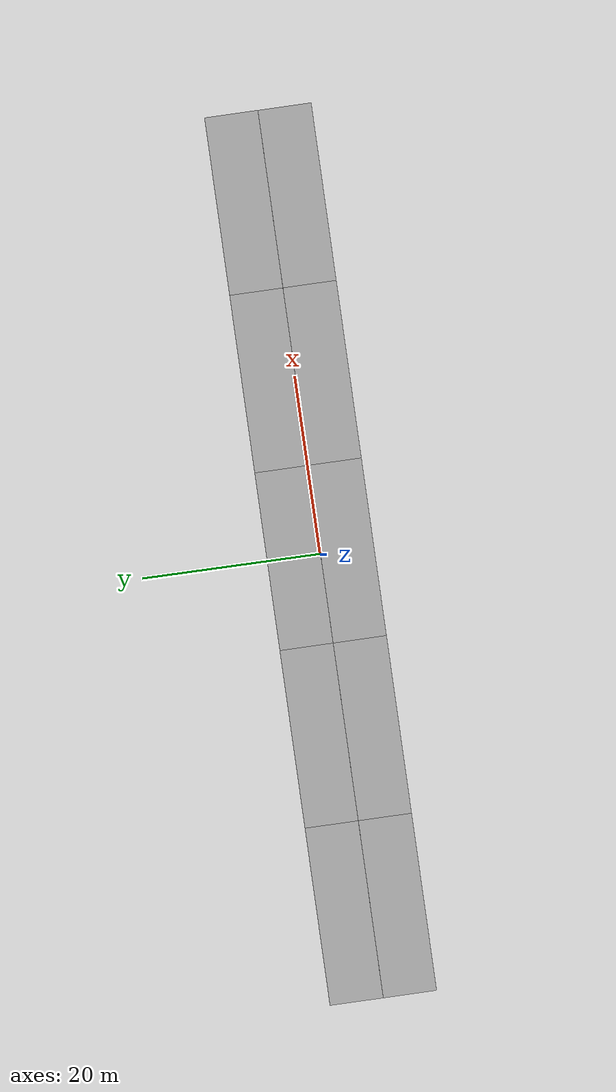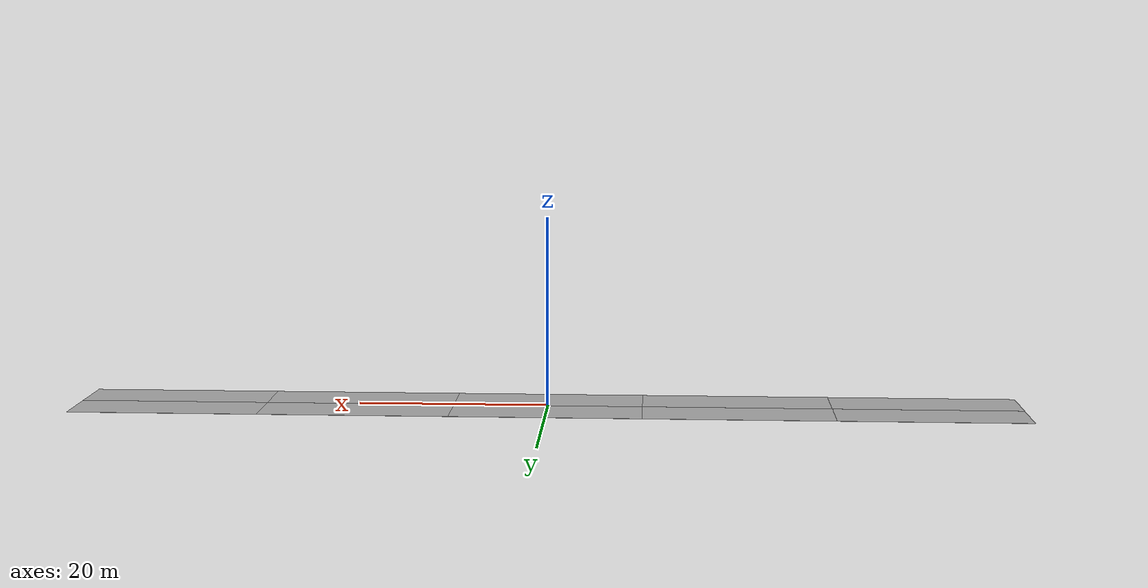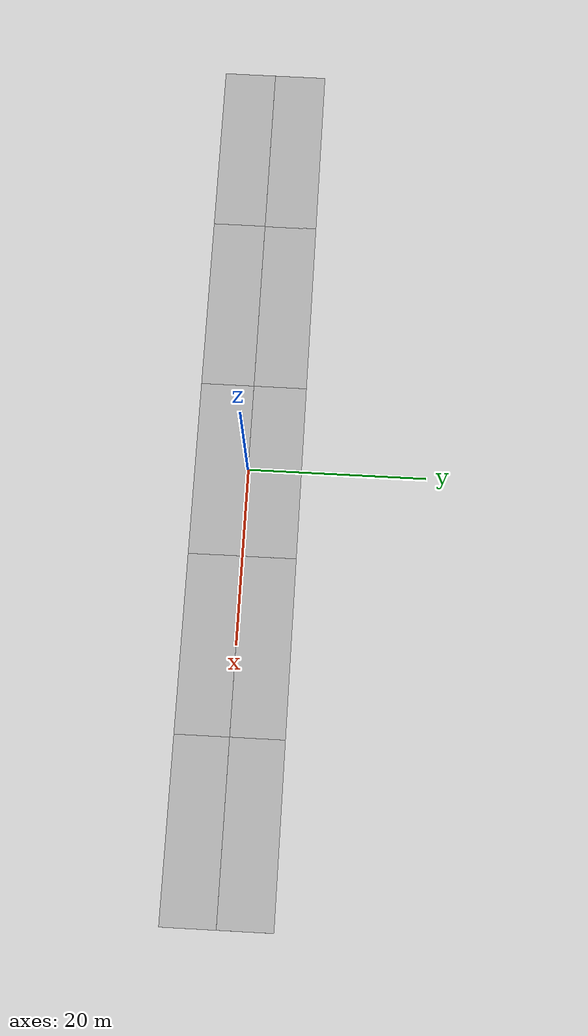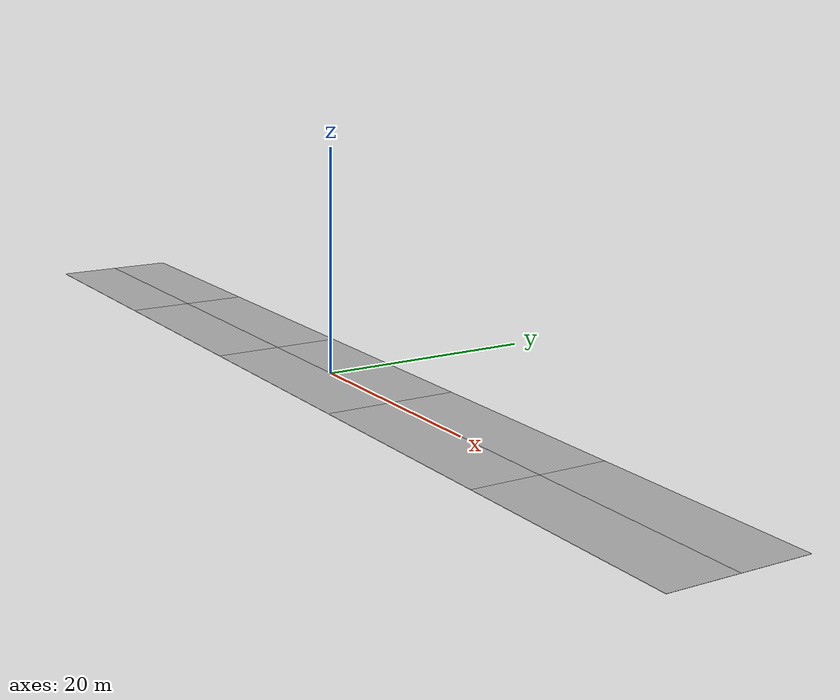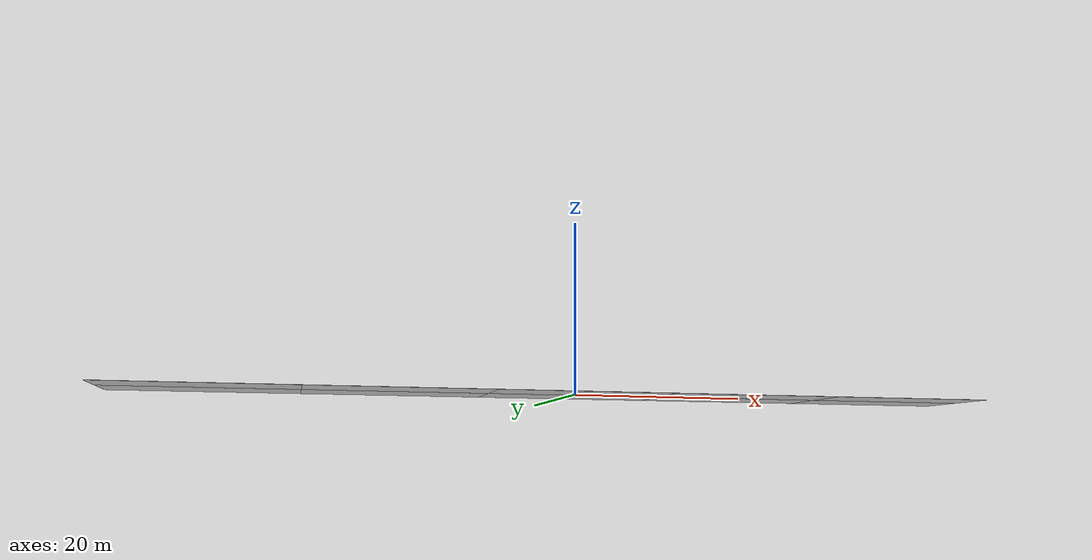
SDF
<?xml version='1.0'?>
<sdf version='1.6'>
  <model name='large_road'>
    <model name='double_straight_road'>
      <model name='straight_road'>
        <link name='link'>
          <inertial>
            <mass>1</mass>
            <inertia>
              <ixx>0.166667</ixx>
              <ixy>0</ixy>
              <ixz>0</ixz>
              <iyy>0.166667</iyy>
              <iyz>0</iyz>
              <izz>0.166667</izz>
            </inertia>
            <pose frame=''>0 0 0 0 -0 0</pose>
          </inertial>
          <self_collide>0</self_collide>
          <enable_wind>0</enable_wind>
          <kinematic>0</kinematic>
          <pose frame=''>0 0 0 0 -0 0</pose>
          <gravity>1</gravity>
          <visual name='visual'>
            <geometry>
              <box>
                <size>20 6 0.02</size>
              </box>
            </geometry>
            <material>
              <script>
                <name>simple_road/Diffuse</name>
                <uri>model://large_road/materials/scripts</uri>
                <uri>model://large_road/materials/textures</uri>
              </script>
              <shader type='vertex'>
                <normal_map>__default__</normal_map>
              </shader>
              <ambient>0.3 0.3 0.3 1</ambient>
              <diffuse>0.7 0.7 0.7 1</diffuse>
              <specular>0.01 0.01 0.01 1</specular>
              <emissive>0 0 0 1</emissive>
            </material>
            <pose frame=''>0 0 0.01 0 -0 0</pose>
            <transparency>0</transparency>
            <cast_shadows>1</cast_shadows>
          </visual>
          <collision name='collision'>
            <laser_retro>0</laser_retro>
            <max_contacts>10</max_contacts>
            <pose frame=''>0 0 0.01 0 -0 0</pose>
            <geometry>
              <box>
                <size>20 6 0.02</size>
              </box>
            </geometry>
            <surface>
              <friction>
                <ode>
                  <mu>1</mu>
                  <mu2>1</mu2>
                  <fdir1>0 0 0</fdir1>
                  <slip1>0</slip1>
                  <slip2>0</slip2>
                </ode>
                <torsional>
                  <coefficient>1</coefficient>
                  <patch_radius>0</patch_radius>
                  <surface_radius>0</surface_radius>
                  <use_patch_radius>1</use_patch_radius>
                  <ode>
                    <slip>0</slip>
                  </ode>
                </torsional>
              </friction>
              <bounce>
                <restitution_coefficient>0</restitution_coefficient>
                <threshold>1e+06</threshold>
              </bounce>
              <contact>
                <collide_without_contact>0</collide_without_contact>
                <collide_without_contact_bitmask>1</collide_without_contact_bitmask>
                <collide_bitmask>1</collide_bitmask>
                <ode>
                  <soft_cfm>0</soft_cfm>
                  <soft_erp>0.2</soft_erp>
                  <kp>1e+13</kp>
                  <kd>1</kd>
                  <max_vel>0.01</max_vel>
                  <min_depth>0</min_depth>
                </ode>
                <bullet>
                  <split_impulse>1</split_impulse>
                  <split_impulse_penetration_threshold>-0.01</split_impulse_penetration_threshold>
                  <soft_cfm>0</soft_cfm>
                  <soft_erp>0.2</soft_erp>
                  <kp>1e+13</kp>
                  <kd>1</kd>
                </bullet>
              </contact>
            </surface>
          </collision>
        </link>
        <static>1</static>
        <allow_auto_disable>1</allow_auto_disable>
        <pose frame=''>0 -3.0009 0 0 -0 0</pose>
      </model>
      <model name='straight_road_0'>
        <link name='link'>
          <inertial>
            <mass>1</mass>
            <inertia>
              <ixx>0.166667</ixx>
              <ixy>0</ixy>
              <ixz>0</ixz>
              <iyy>0.166667</iyy>
              <iyz>0</iyz>
              <izz>0.166667</izz>
            </inertia>
            <pose frame=''>0 0 0 0 -0 0</pose>
          </inertial>
          <self_collide>0</self_collide>
          <enable_wind>0</enable_wind>
          <kinematic>0</kinematic>
          <pose frame=''>0 0 0 0 -0 0</pose>
          <gravity>1</gravity>
          <visual name='visual'>
            <geometry>
              <box>
                <size>20 6 0.02</size>
              </box>
            </geometry>
            <material>
              <script>
                <name>simple_road/Diffuse</name>
                <uri>model://large_road/materials/scripts</uri>
                <uri>model://large_road/materials/textures</uri>
              </script>
              <shader type='vertex'>
                <normal_map>__default__</normal_map>
              </shader>
              <ambient>0.3 0.3 0.3 1</ambient>
              <diffuse>0.7 0.7 0.7 1</diffuse>
              <specular>0.01 0.01 0.01 1</specular>
              <emissive>0 0 0 1</emissive>
            </material>
            <pose frame=''>0 0 0.01 0 -0 0</pose>
            <transparency>0</transparency>
            <cast_shadows>1</cast_shadows>
          </visual>
          <collision name='collision'>
            <laser_retro>0</laser_retro>
            <max_contacts>10</max_contacts>
            <pose frame=''>0 0 0.01 0 -0 0</pose>
            <geometry>
              <box>
                <size>20 6 0.02</size>
              </box>
            </geometry>
            <surface>
              <friction>
                <ode>
                  <mu>1</mu>
                  <mu2>1</mu2>
                  <fdir1>0 0 0</fdir1>
                  <slip1>0</slip1>
                  <slip2>0</slip2>
                </ode>
                <torsional>
                  <coefficient>1</coefficient>
                  <patch_radius>0</patch_radius>
                  <surface_radius>0</surface_radius>
                  <use_patch_radius>1</use_patch_radius>
                  <ode>
                    <slip>0</slip>
                  </ode>
                </torsional>
              </friction>
              <bounce>
                <restitution_coefficient>0</restitution_coefficient>
                <threshold>1e+06</threshold>
              </bounce>
              <contact>
                <collide_without_contact>0</collide_without_contact>
                <collide_without_contact_bitmask>1</collide_without_contact_bitmask>
                <collide_bitmask>1</collide_bitmask>
                <ode>
                  <soft_cfm>0</soft_cfm>
                  <soft_erp>0.2</soft_erp>
                  <kp>1e+13</kp>
                  <kd>1</kd>
                  <max_vel>0.01</max_vel>
                  <min_depth>0</min_depth>
                </ode>
                <bullet>
                  <split_impulse>1</split_impulse>
                  <split_impulse_penetration_threshold>-0.01</split_impulse_penetration_threshold>
                  <soft_cfm>0</soft_cfm>
                  <soft_erp>0.2</soft_erp>
                  <kp>1e+13</kp>
                  <kd>1</kd>
                </bullet>
              </contact>
            </surface>
          </collision>
        </link>
        <static>1</static>
        <allow_auto_disable>1</allow_auto_disable>
        <pose frame=''>0 3.0009 0 0 -0 0</pose>
      </model>
      <static>1</static>
      <allow_auto_disable>1</allow_auto_disable>
      <pose frame=''>-0.002785 -0 0 0 -0 0</pose>
    </model>
    <model name='double_straight_road_0'>
      <model name='straight_road'>
        <link name='link'>
          <inertial>
            <mass>1</mass>
            <inertia>
              <ixx>0.166667</ixx>
              <ixy>0</ixy>
              <ixz>0</ixz>
              <iyy>0.166667</iyy>
              <iyz>0</iyz>
              <izz>0.166667</izz>
            </inertia>
            <pose frame=''>0 0 0 0 -0 0</pose>
          </inertial>
          <self_collide>0</self_collide>
          <enable_wind>0</enable_wind>
          <kinematic>0</kinematic>
          <pose frame=''>0 0 0 0 -0 0</pose>
          <gravity>1</gravity>
          <visual name='visual'>
            <geometry>
              <box>
                <size>20 6 0.02</size>
              </box>
            </geometry>
            <material>
              <script>
                <name>simple_road/Diffuse</name>
                <uri>model://large_road/materials/scripts</uri>
                <uri>model://large_road/materials/textures</uri>
              </script>
              <shader type='vertex'>
                <normal_map>__default__</normal_map>
              </shader>
              <ambient>0.3 0.3 0.3 1</ambient>
              <diffuse>0.7 0.7 0.7 1</diffuse>
              <specular>0.01 0.01 0.01 1</specular>
              <emissive>0 0 0 1</emissive>
            </material>
            <pose frame=''>0 0 0.01 0 -0 0</pose>
            <transparency>0</transparency>
            <cast_shadows>1</cast_shadows>
          </visual>
          <collision name='collision'>
            <laser_retro>0</laser_retro>
            <max_contacts>10</max_contacts>
            <pose frame=''>0 0 0.01 0 -0 0</pose>
            <geometry>
              <box>
                <size>20 6 0.02</size>
              </box>
            </geometry>
            <surface>
              <friction>
                <ode>
                  <mu>1</mu>
                  <mu2>1</mu2>
                  <fdir1>0 0 0</fdir1>
                  <slip1>0</slip1>
                  <slip2>0</slip2>
                </ode>
                <torsional>
                  <coefficient>1</coefficient>
                  <patch_radius>0</patch_radius>
                  <surface_radius>0</surface_radius>
                  <use_patch_radius>1</use_patch_radius>
                  <ode>
                    <slip>0</slip>
                  </ode>
                </torsional>
              </friction>
              <bounce>
                <restitution_coefficient>0</restitution_coefficient>
                <threshold>1e+06</threshold>
              </bounce>
              <contact>
                <collide_without_contact>0</collide_without_contact>
                <collide_without_contact_bitmask>1</collide_without_contact_bitmask>
                <collide_bitmask>1</collide_bitmask>
                <ode>
                  <soft_cfm>0</soft_cfm>
                  <soft_erp>0.2</soft_erp>
                  <kp>1e+13</kp>
                  <kd>1</kd>
                  <max_vel>0.01</max_vel>
                  <min_depth>0</min_depth>
                </ode>
                <bullet>
                  <split_impulse>1</split_impulse>
                  <split_impulse_penetration_threshold>-0.01</split_impulse_penetration_threshold>
                  <soft_cfm>0</soft_cfm>
                  <soft_erp>0.2</soft_erp>
                  <kp>1e+13</kp>
                  <kd>1</kd>
                </bullet>
              </contact>
            </surface>
          </collision>
        </link>
        <static>1</static>
        <allow_auto_disable>1</allow_auto_disable>
        <pose frame=''>0 -3.0009 0 0 -0 0</pose>
      </model>
      <model name='straight_road_0'>
        <link name='link'>
          <inertial>
            <mass>1</mass>
            <inertia>
              <ixx>0.166667</ixx>
              <ixy>0</ixy>
              <ixz>0</ixz>
              <iyy>0.166667</iyy>
              <iyz>0</iyz>
              <izz>0.166667</izz>
            </inertia>
            <pose frame=''>0 0 0 0 -0 0</pose>
          </inertial>
          <self_collide>0</self_collide>
          <enable_wind>0</enable_wind>
          <kinematic>0</kinematic>
          <pose frame=''>0 0 0 0 -0 0</pose>
          <gravity>1</gravity>
          <visual name='visual'>
            <geometry>
              <box>
                <size>20 6 0.02</size>
              </box>
            </geometry>
            <material>
              <script>
                <name>simple_road/Diffuse</name>
                <uri>model://large_road/materials/scripts</uri>
                <uri>model://large_road/materials/textures</uri>
              </script>
              <shader type='vertex'>
                <normal_map>__default__</normal_map>
              </shader>
              <ambient>0.3 0.3 0.3 1</ambient>
              <diffuse>0.7 0.7 0.7 1</diffuse>
              <specular>0.01 0.01 0.01 1</specular>
              <emissive>0 0 0 1</emissive>
            </material>
            <pose frame=''>0 0 0.01 0 -0 0</pose>
            <transparency>0</transparency>
            <cast_shadows>1</cast_shadows>
          </visual>
          <collision name='collision'>
            <laser_retro>0</laser_retro>
            <max_contacts>10</max_contacts>
            <pose frame=''>0 0 0.01 0 -0 0</pose>
            <geometry>
              <box>
                <size>20 6 0.02</size>
              </box>
            </geometry>
            <surface>
              <friction>
                <ode>
                  <mu>1</mu>
                  <mu2>1</mu2>
                  <fdir1>0 0 0</fdir1>
                  <slip1>0</slip1>
                  <slip2>0</slip2>
                </ode>
                <torsional>
                  <coefficient>1</coefficient>
                  <patch_radius>0</patch_radius>
                  <surface_radius>0</surface_radius>
                  <use_patch_radius>1</use_patch_radius>
                  <ode>
                    <slip>0</slip>
                  </ode>
                </torsional>
              </friction>
              <bounce>
                <restitution_coefficient>0</restitution_coefficient>
                <threshold>1e+06</threshold>
              </bounce>
              <contact>
                <collide_without_contact>0</collide_without_contact>
                <collide_without_contact_bitmask>1</collide_without_contact_bitmask>
                <collide_bitmask>1</collide_bitmask>
                <ode>
                  <soft_cfm>0</soft_cfm>
                  <soft_erp>0.2</soft_erp>
                  <kp>1e+13</kp>
                  <kd>1</kd>
                  <max_vel>0.01</max_vel>
                  <min_depth>0</min_depth>
                </ode>
                <bullet>
                  <split_impulse>1</split_impulse>
                  <split_impulse_penetration_threshold>-0.01</split_impulse_penetration_threshold>
                  <soft_cfm>0</soft_cfm>
                  <soft_erp>0.2</soft_erp>
                  <kp>1e+13</kp>
                  <kd>1</kd>
                </bullet>
              </contact>
            </surface>
          </collision>
        </link>
        <static>1</static>
        <allow_auto_disable>1</allow_auto_disable>
        <pose frame=''>0 3.0009 0 0 -0 0</pose>
      </model>
      <static>1</static>
      <allow_auto_disable>1</allow_auto_disable>
      <pose frame=''>-20.0022 -0 0 0 -0 0</pose>
    </model>
    <model name='double_straight_road_1'>
      <model name='straight_road'>
        <link name='link'>
          <inertial>
            <mass>1</mass>
            <inertia>
              <ixx>0.166667</ixx>
              <ixy>0</ixy>
              <ixz>0</ixz>
              <iyy>0.166667</iyy>
              <iyz>0</iyz>
              <izz>0.166667</izz>
            </inertia>
            <pose frame=''>0 0 0 0 -0 0</pose>
          </inertial>
          <self_collide>0</self_collide>
          <enable_wind>0</enable_wind>
          <kinematic>0</kinematic>
          <pose frame=''>0 0 0 0 -0 0</pose>
          <gravity>1</gravity>
          <visual name='visual'>
            <geometry>
              <box>
                <size>20 6 0.02</size>
              </box>
            </geometry>
            <material>
              <script>
                <name>simple_road/Diffuse</name>
                <uri>model://large_road/materials/scripts</uri>
                <uri>model://large_road/materials/textures</uri>
              </script>
              <shader type='vertex'>
                <normal_map>__default__</normal_map>
              </shader>
              <ambient>0.3 0.3 0.3 1</ambient>
              <diffuse>0.7 0.7 0.7 1</diffuse>
              <specular>0.01 0.01 0.01 1</specular>
              <emissive>0 0 0 1</emissive>
            </material>
            <pose frame=''>0 0 0.01 0 -0 0</pose>
            <transparency>0</transparency>
            <cast_shadows>1</cast_shadows>
          </visual>
          <collision name='collision'>
            <laser_retro>0</laser_retro>
            <max_contacts>10</max_contacts>
            <pose frame=''>0 0 0.01 0 -0 0</pose>
            <geometry>
              <box>
                <size>20 6 0.02</size>
              </box>
            </geometry>
            <surface>
              <friction>
                <ode>
                  <mu>1</mu>
                  <mu2>1</mu2>
                  <fdir1>0 0 0</fdir1>
                  <slip1>0</slip1>
                  <slip2>0</slip2>
                </ode>
                <torsional>
                  <coefficient>1</coefficient>
                  <patch_radius>0</patch_radius>
                  <surface_radius>0</surface_radius>
                  <use_patch_radius>1</use_patch_radius>
                  <ode>
                    <slip>0</slip>
                  </ode>
                </torsional>
              </friction>
              <bounce>
                <restitution_coefficient>0</restitution_coefficient>
                <threshold>1e+06</threshold>
              </bounce>
              <contact>
                <collide_without_contact>0</collide_without_contact>
                <collide_without_contact_bitmask>1</collide_without_contact_bitmask>
                <collide_bitmask>1</collide_bitmask>
                <ode>
                  <soft_cfm>0</soft_cfm>
                  <soft_erp>0.2</soft_erp>
                  <kp>1e+13</kp>
                  <kd>1</kd>
                  <max_vel>0.01</max_vel>
                  <min_depth>0</min_depth>
                </ode>
                <bullet>
                  <split_impulse>1</split_impulse>
                  <split_impulse_penetration_threshold>-0.01</split_impulse_penetration_threshold>
                  <soft_cfm>0</soft_cfm>
                  <soft_erp>0.2</soft_erp>
                  <kp>1e+13</kp>
                  <kd>1</kd>
                </bullet>
              </contact>
            </surface>
          </collision>
        </link>
        <static>1</static>
        <allow_auto_disable>1</allow_auto_disable>
        <pose frame=''>0 -3.0009 0 0 -0 0</pose>
      </model>
      <model name='straight_road_0'>
        <link name='link'>
          <inertial>
            <mass>1</mass>
            <inertia>
              <ixx>0.166667</ixx>
              <ixy>0</ixy>
              <ixz>0</ixz>
              <iyy>0.166667</iyy>
              <iyz>0</iyz>
              <izz>0.166667</izz>
            </inertia>
            <pose frame=''>0 0 0 0 -0 0</pose>
          </inertial>
          <self_collide>0</self_collide>
          <enable_wind>0</enable_wind>
          <kinematic>0</kinematic>
          <pose frame=''>0 0 0 0 -0 0</pose>
          <gravity>1</gravity>
          <visual name='visual'>
            <geometry>
              <box>
                <size>20 6 0.02</size>
              </box>
            </geometry>
            <material>
              <script>
                <name>simple_road/Diffuse</name>
                <uri>model://large_road/materials/scripts</uri>
                <uri>model://large_road/materials/textures</uri>
              </script>
              <shader type='vertex'>
                <normal_map>__default__</normal_map>
              </shader>
              <ambient>0.3 0.3 0.3 1</ambient>
              <diffuse>0.7 0.7 0.7 1</diffuse>
              <specular>0.01 0.01 0.01 1</specular>
              <emissive>0 0 0 1</emissive>
            </material>
            <pose frame=''>0 0 0.01 0 -0 0</pose>
            <transparency>0</transparency>
            <cast_shadows>1</cast_shadows>
          </visual>
          <collision name='collision'>
            <laser_retro>0</laser_retro>
            <max_contacts>10</max_contacts>
            <pose frame=''>0 0 0.01 0 -0 0</pose>
            <geometry>
              <box>
                <size>20 6 0.02</size>
              </box>
            </geometry>
            <surface>
              <friction>
                <ode>
                  <mu>1</mu>
                  <mu2>1</mu2>
                  <fdir1>0 0 0</fdir1>
                  <slip1>0</slip1>
                  <slip2>0</slip2>
                </ode>
                <torsional>
                  <coefficient>1</coefficient>
                  <patch_radius>0</patch_radius>
                  <surface_radius>0</surface_radius>
                  <use_patch_radius>1</use_patch_radius>
                  <ode>
                    <slip>0</slip>
                  </ode>
                </torsional>
              </friction>
              <bounce>
                <restitution_coefficient>0</restitution_coefficient>
                <threshold>1e+06</threshold>
              </bounce>
              <contact>
                <collide_without_contact>0</collide_without_contact>
                <collide_without_contact_bitmask>1</collide_without_contact_bitmask>
                <collide_bitmask>1</collide_bitmask>
                <ode>
                  <soft_cfm>0</soft_cfm>
                  <soft_erp>0.2</soft_erp>
                  <kp>1e+13</kp>
                  <kd>1</kd>
                  <max_vel>0.01</max_vel>
                  <min_depth>0</min_depth>
                </ode>
                <bullet>
                  <split_impulse>1</split_impulse>
                  <split_impulse_penetration_threshold>-0.01</split_impulse_penetration_threshold>
                  <soft_cfm>0</soft_cfm>
                  <soft_erp>0.2</soft_erp>
                  <kp>1e+13</kp>
                  <kd>1</kd>
                </bullet>
              </contact>
            </surface>
          </collision>
        </link>
        <static>1</static>
        <allow_auto_disable>1</allow_auto_disable>
        <pose frame=''>0 3.0009 0 0 -0 0</pose>
      </model>
      <static>1</static>
      <allow_auto_disable>1</allow_auto_disable>
      <pose frame=''>19.9841 -0 0 0 -0 0</pose>
    </model>
    <model name='double_straight_road_2'>
      <model name='straight_road'>
        <link name='link'>
          <inertial>
            <mass>1</mass>
            <inertia>
              <ixx>0.166667</ixx>
              <ixy>0</ixy>
              <ixz>0</ixz>
              <iyy>0.166667</iyy>
              <iyz>0</iyz>
              <izz>0.166667</izz>
            </inertia>
            <pose frame=''>0 0 0 0 -0 0</pose>
          </inertial>
          <self_collide>0</self_collide>
          <enable_wind>0</enable_wind>
          <kinematic>0</kinematic>
          <pose frame=''>0 0 0 0 -0 0</pose>
          <gravity>1</gravity>
          <visual name='visual'>
            <geometry>
              <box>
                <size>20 6 0.02</size>
              </box>
            </geometry>
            <material>
              <script>
                <name>simple_road/Diffuse</name>
                <uri>model://large_road/materials/scripts</uri>
                <uri>model://large_road/materials/textures</uri>
              </script>
              <shader type='vertex'>
                <normal_map>__default__</normal_map>
              </shader>
              <ambient>0.3 0.3 0.3 1</ambient>
              <diffuse>0.7 0.7 0.7 1</diffuse>
              <specular>0.01 0.01 0.01 1</specular>
              <emissive>0 0 0 1</emissive>
            </material>
            <pose frame=''>0 0 0.01 0 -0 0</pose>
            <transparency>0</transparency>
            <cast_shadows>1</cast_shadows>
          </visual>
          <collision name='collision'>
            <laser_retro>0</laser_retro>
            <max_contacts>10</max_contacts>
            <pose frame=''>0 0 0.01 0 -0 0</pose>
            <geometry>
              <box>
                <size>20 6 0.02</size>
              </box>
            </geometry>
            <surface>
              <friction>
                <ode>
                  <mu>1</mu>
                  <mu2>1</mu2>
                  <fdir1>0 0 0</fdir1>
                  <slip1>0</slip1>
                  <slip2>0</slip2>
                </ode>
                <torsional>
                  <coefficient>1</coefficient>
                  <patch_radius>0</patch_radius>
                  <surface_radius>0</surface_radius>
                  <use_patch_radius>1</use_patch_radius>
                  <ode>
                    <slip>0</slip>
                  </ode>
                </torsional>
              </friction>
              <bounce>
                <restitution_coefficient>0</restitution_coefficient>
                <threshold>1e+06</threshold>
              </bounce>
              <contact>
                <collide_without_contact>0</collide_without_contact>
                <collide_without_contact_bitmask>1</collide_without_contact_bitmask>
                <collide_bitmask>1</collide_bitmask>
                <ode>
                  <soft_cfm>0</soft_cfm>
                  <soft_erp>0.2</soft_erp>
                  <kp>1e+13</kp>
                  <kd>1</kd>
                  <max_vel>0.01</max_vel>
                  <min_depth>0</min_depth>
                </ode>
                <bullet>
                  <split_impulse>1</split_impulse>
                  <split_impulse_penetration_threshold>-0.01</split_impulse_penetration_threshold>
                  <soft_cfm>0</soft_cfm>
                  <soft_erp>0.2</soft_erp>
                  <kp>1e+13</kp>
                  <kd>1</kd>
                </bullet>
              </contact>
            </surface>
          </collision>
        </link>
        <static>1</static>
        <allow_auto_disable>1</allow_auto_disable>
        <pose frame=''>0 -3.0009 0 0 -0 0</pose>
      </model>
      <model name='straight_road_0'>
        <link name='link'>
          <inertial>
            <mass>1</mass>
            <inertia>
              <ixx>0.166667</ixx>
              <ixy>0</ixy>
              <ixz>0</ixz>
              <iyy>0.166667</iyy>
              <iyz>0</iyz>
              <izz>0.166667</izz>
            </inertia>
            <pose frame=''>0 0 0 0 -0 0</pose>
          </inertial>
          <self_collide>0</self_collide>
          <enable_wind>0</enable_wind>
          <kinematic>0</kinematic>
          <pose frame=''>0 0 0 0 -0 0</pose>
          <gravity>1</gravity>
          <visual name='visual'>
            <geometry>
              <box>
                <size>20 6 0.02</size>
              </box>
            </geometry>
            <material>
              <script>
                <name>simple_road/Diffuse</name>
                <uri>model://large_road/materials/scripts</uri>
                <uri>model://large_road/materials/textures</uri>
              </script>
              <shader type='vertex'>
                <normal_map>__default__</normal_map>
              </shader>
              <ambient>0.3 0.3 0.3 1</ambient>
              <diffuse>0.7 0.7 0.7 1</diffuse>
              <specular>0.01 0.01 0.01 1</specular>
              <emissive>0 0 0 1</emissive>
            </material>
            <pose frame=''>0 0 0.01 0 -0 0</pose>
            <transparency>0</transparency>
            <cast_shadows>1</cast_shadows>
          </visual>
          <collision name='collision'>
            <laser_retro>0</laser_retro>
            <max_contacts>10</max_contacts>
            <pose frame=''>0 0 0.01 0 -0 0</pose>
            <geometry>
              <box>
                <size>20 6 0.02</size>
              </box>
            </geometry>
            <surface>
              <friction>
                <ode>
                  <mu>1</mu>
                  <mu2>1</mu2>
                  <fdir1>0 0 0</fdir1>
                  <slip1>0</slip1>
                  <slip2>0</slip2>
                </ode>
                <torsional>
                  <coefficient>1</coefficient>
                  <patch_radius>0</patch_radius>
                  <surface_radius>0</surface_radius>
                  <use_patch_radius>1</use_patch_radius>
                  <ode>
                    <slip>0</slip>
                  </ode>
                </torsional>
              </friction>
              <bounce>
                <restitution_coefficient>0</restitution_coefficient>
                <threshold>1e+06</threshold>
              </bounce>
              <contact>
                <collide_without_contact>0</collide_without_contact>
                <collide_without_contact_bitmask>1</collide_without_contact_bitmask>
                <collide_bitmask>1</collide_bitmask>
                <ode>
                  <soft_cfm>0</soft_cfm>
                  <soft_erp>0.2</soft_erp>
                  <kp>1e+13</kp>
                  <kd>1</kd>
                  <max_vel>0.01</max_vel>
                  <min_depth>0</min_depth>
                </ode>
                <bullet>
                  <split_impulse>1</split_impulse>
                  <split_impulse_penetration_threshold>-0.01</split_impulse_penetration_threshold>
                  <soft_cfm>0</soft_cfm>
                  <soft_erp>0.2</soft_erp>
                  <kp>1e+13</kp>
                  <kd>1</kd>
                </bullet>
              </contact>
            </surface>
          </collision>
        </link>
        <static>1</static>
        <allow_auto_disable>1</allow_auto_disable>
        <pose frame=''>0 3.0009 0 0 -0 0</pose>
      </model>
      <static>1</static>
      <allow_auto_disable>1</allow_auto_disable>
      <pose frame=''>-39.9522 -0 0 0 -0 0</pose>
    </model>
    <model name='double_straight_road_3'>
      <model name='straight_road'>
        <link name='link'>
          <inertial>
            <mass>1</mass>
            <inertia>
              <ixx>0.166667</ixx>
              <ixy>0</ixy>
              <ixz>0</ixz>
              <iyy>0.166667</iyy>
              <iyz>0</iyz>
              <izz>0.166667</izz>
            </inertia>
            <pose frame=''>0 0 0 0 -0 0</pose>
          </inertial>
          <self_collide>0</self_collide>
          <enable_wind>0</enable_wind>
          <kinematic>0</kinematic>
          <pose frame=''>0 0 0 0 -0 0</pose>
          <gravity>1</gravity>
          <visual name='visual'>
            <geometry>
              <box>
                <size>20 6 0.02</size>
              </box>
            </geometry>
            <material>
              <script>
                <name>simple_road/Diffuse</name>
                <uri>model://large_road/materials/scripts</uri>
                <uri>model://large_road/materials/textures</uri>
              </script>
              <shader type='vertex'>
                <normal_map>__default__</normal_map>
              </shader>
              <ambient>0.3 0.3 0.3 1</ambient>
              <diffuse>0.7 0.7 0.7 1</diffuse>
              <specular>0.01 0.01 0.01 1</specular>
              <emissive>0 0 0 1</emissive>
            </material>
            <pose frame=''>0 0 0.01 0 -0 0</pose>
            <transparency>0</transparency>
            <cast_shadows>1</cast_shadows>
          </visual>
          <collision name='collision'>
            <laser_retro>0</laser_retro>
            <max_contacts>10</max_contacts>
            <pose frame=''>0 0 0.01 0 -0 0</pose>
            <geometry>
              <box>
                <size>20 6 0.02</size>
              </box>
            </geometry>
            <surface>
              <friction>
                <ode>
                  <mu>1</mu>
                  <mu2>1</mu2>
                  <fdir1>0 0 0</fdir1>
                  <slip1>0</slip1>
                  <slip2>0</slip2>
                </ode>
                <torsional>
                  <coefficient>1</coefficient>
                  <patch_radius>0</patch_radius>
                  <surface_radius>0</surface_radius>
                  <use_patch_radius>1</use_patch_radius>
                  <ode>
                    <slip>0</slip>
                  </ode>
                </torsional>
              </friction>
              <bounce>
                <restitution_coefficient>0</restitution_coefficient>
                <threshold>1e+06</threshold>
              </bounce>
              <contact>
                <collide_without_contact>0</collide_without_contact>
                <collide_without_contact_bitmask>1</collide_without_contact_bitmask>
                <collide_bitmask>1</collide_bitmask>
                <ode>
                  <soft_cfm>0</soft_cfm>
                  <soft_erp>0.2</soft_erp>
                  <kp>1e+13</kp>
                  <kd>1</kd>
                  <max_vel>0.01</max_vel>
                  <min_depth>0</min_depth>
                </ode>
                <bullet>
                  <split_impulse>1</split_impulse>
                  <split_impulse_penetration_threshold>-0.01</split_impulse_penetration_threshold>
                  <soft_cfm>0</soft_cfm>
                  <soft_erp>0.2</soft_erp>
                  <kp>1e+13</kp>
                  <kd>1</kd>
                </bullet>
              </contact>
            </surface>
          </collision>
        </link>
        <static>1</static>
        <allow_auto_disable>1</allow_auto_disable>
        <pose frame=''>0 -3.0009 0 0 -0 0</pose>
      </model>
      <model name='straight_road_0'>
        <link name='link'>
          <inertial>
            <mass>1</mass>
            <inertia>
              <ixx>0.166667</ixx>
              <ixy>0</ixy>
              <ixz>0</ixz>
              <iyy>0.166667</iyy>
              <iyz>0</iyz>
              <izz>0.166667</izz>
            </inertia>
            <pose frame=''>0 0 0 0 -0 0</pose>
          </inertial>
          <self_collide>0</self_collide>
          <enable_wind>0</enable_wind>
          <kinematic>0</kinematic>
          <pose frame=''>0 0 0 0 -0 0</pose>
          <gravity>1</gravity>
          <visual name='visual'>
            <geometry>
              <box>
                <size>20 6 0.02</size>
              </box>
            </geometry>
            <material>
              <script>
                <name>simple_road/Diffuse</name>
                <uri>model://large_road/materials/scripts</uri>
                <uri>model://large_road/materials/textures</uri>
              </script>
              <shader type='vertex'>
                <normal_map>__default__</normal_map>
              </shader>
              <ambient>0.3 0.3 0.3 1</ambient>
              <diffuse>0.7 0.7 0.7 1</diffuse>
              <specular>0.01 0.01 0.01 1</specular>
              <emissive>0 0 0 1</emissive>
            </material>
            <pose frame=''>0 0 0.01 0 -0 0</pose>
            <transparency>0</transparency>
            <cast_shadows>1</cast_shadows>
          </visual>
          <collision name='collision'>
            <laser_retro>0</laser_retro>
            <max_contacts>10</max_contacts>
            <pose frame=''>0 0 0.01 0 -0 0</pose>
            <geometry>
              <box>
                <size>20 6 0.02</size>
              </box>
            </geometry>
            <surface>
              <friction>
                <ode>
                  <mu>1</mu>
                  <mu2>1</mu2>
                  <fdir1>0 0 0</fdir1>
                  <slip1>0</slip1>
                  <slip2>0</slip2>
                </ode>
                <torsional>
                  <coefficient>1</coefficient>
                  <patch_radius>0</patch_radius>
                  <surface_radius>0</surface_radius>
                  <use_patch_radius>1</use_patch_radius>
                  <ode>
                    <slip>0</slip>
                  </ode>
                </torsional>
              </friction>
              <bounce>
                <restitution_coefficient>0</restitution_coefficient>
                <threshold>1e+06</threshold>
              </bounce>
              <contact>
                <collide_without_contact>0</collide_without_contact>
                <collide_without_contact_bitmask>1</collide_without_contact_bitmask>
                <collide_bitmask>1</collide_bitmask>
                <ode>
                  <soft_cfm>0</soft_cfm>
                  <soft_erp>0.2</soft_erp>
                  <kp>1e+13</kp>
                  <kd>1</kd>
                  <max_vel>0.01</max_vel>
                  <min_depth>0</min_depth>
                </ode>
                <bullet>
                  <split_impulse>1</split_impulse>
                  <split_impulse_penetration_threshold>-0.01</split_impulse_penetration_threshold>
                  <soft_cfm>0</soft_cfm>
                  <soft_erp>0.2</soft_erp>
                  <kp>1e+13</kp>
                  <kd>1</kd>
                </bullet>
              </contact>
            </surface>
          </collision>
        </link>
        <static>1</static>
        <allow_auto_disable>1</allow_auto_disable>
        <pose frame=''>0 3.0009 0 0 -0 0</pose>
      </model>
      <static>1</static>
      <allow_auto_disable>1</allow_auto_disable>
      <pose frame=''>39.9731 -0 0 0 -0 0</pose>
    </model>
    <static>1</static>
    <allow_auto_disable>1</allow_auto_disable>
  </model>
</sdf>
